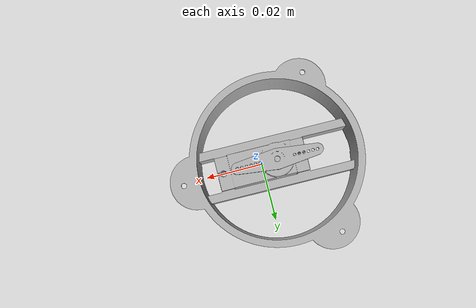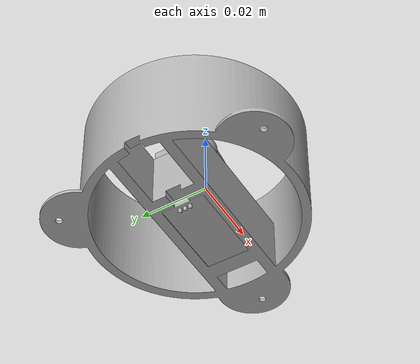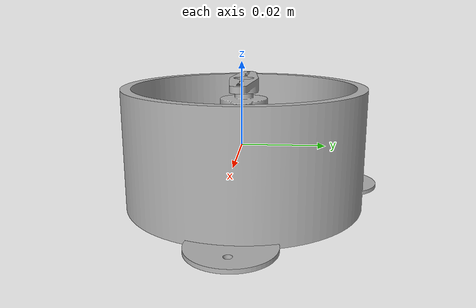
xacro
<?xml version="1.0" ?>
<robot name="Servo_clone" xmlns:xacro="http://www.ros.org/wiki/xacro">

<xacro:include filename="$(find Servo_clone_description)/urdf/materials.xacro" />
<xacro:include filename="$(find Servo_clone_description)/urdf/Servo_clone.trans" />
<xacro:include filename="$(find Servo_clone_description)/urdf/Servo_clone.gazebo" />
<xacro:include filename="$(find ros2_control_demo_example_1)/ros2_control/servo_arm.ros2_control.xacro" />

<link name="base_link">
  <inertial>
    <origin xyz="-0.0003733261171936679 -1.415969839225099e-10 -0.003749778735520101" rpy="0 0 0"/>
    <mass value="0.05514475420323322"/>
    <inertia ixx="4e-06" iyy="6e-06" izz="3e-06" ixy="-0.0" iyz="0.0" ixz="0.0"/>
  </inertial>
  <visual>
    <origin xyz="0 0 0" rpy="0 0 0"/>
    <geometry>
      <mesh filename="file://$(find Servo_clone_description)/meshes/base_link.stl" scale="0.001 0.001 0.001"/>
    </geometry>
    <material name="silver"/>
  </visual>
  <collision>
    <origin xyz="0 0 0" rpy="0 0 0"/>
    <geometry>
      <mesh filename="file://$(find Servo_clone_description)/meshes/base_link.stl" scale="0.001 0.001 0.001"/>
    </geometry>
  </collision>
</link>

<link name="horn_1">
  <inertial>
    <origin xyz="8.352693536828326e-16 -8.054779743942258e-18 0.000837172855025211" rpy="0 0 0"/>
    <mass value="0.0022458903814511905"/>
    <inertia ixx="0.0" iyy="0.0" izz="0.0" ixy="-0.0" iyz="-0.0" ixz="-0.0"/>
  </inertial>
  <visual>
    <origin xyz="0.00535 -0.0 -0.0136" rpy="0 0 0"/>
    <geometry>
      <mesh filename="file://$(find Servo_clone_description)/meshes/horn_1.stl" scale="0.001 0.001 0.001"/>
    </geometry>
    <material name="silver"/>
  </visual>
  <collision>
    <origin xyz="0.00535 -0.0 -0.0136" rpy="0 0 0"/>
    <geometry>
      <mesh filename="file://$(find Servo_clone_description)/meshes/horn_1.stl" scale="0.001 0.001 0.001"/>
    </geometry>
  </collision>
</link>

<link name="arm_base_1">
  <inertial>
    <origin xyz="-0.0187517959656261 -1.796348326727161e-17 -0.0038637379533287297" rpy="0 0 0"/>
    <mass value="0.16304743822991946"/>
    <inertia ixx="6e-05" iyy="6.9e-05" izz="0.000107" ixy="0.0" iyz="-0.0" ixz="0.0"/>
  </inertial>
  <visual>
    <origin xyz="-0.0139 0.0 -0.0" rpy="0 0 0"/>
    <geometry>
      <mesh filename="file://$(find Servo_clone_description)/meshes/arm_base_1.stl" scale="0.001 0.001 0.001"/>
    </geometry>
    <material name="silver"/>
  </visual>
  <collision>
    <origin xyz="-0.0139 0.0 -0.0" rpy="0 0 0"/>
    <geometry>
      <mesh filename="file://$(find Servo_clone_description)/meshes/arm_base_1.stl" scale="0.001 0.001 0.001"/>
    </geometry>
  </collision>
</link>

<joint name="Revolute_1" type="revolute">
  <origin xyz="-0.00535 0.0 0.0136" rpy="0 0 0"/>
  <parent link="base_link"/>
  <child link="horn_1"/>
  <axis xyz="0.0 0.0 1.0"/>
  <limit upper="1.570796" lower="-1.570796" effort="100" velocity="100"/>
</joint>

<joint name="Rigid_4" type="fixed">
  <origin xyz="0.0139 0.0 0.0" rpy="0 0 0"/>
  <parent link="base_link"/>
  <child link="arm_base_1"/>
</joint>

</robot>

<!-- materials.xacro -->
<robot name="Servo_clone" xmlns:xacro="http://www.ros.org/wiki/xacro" >

<material name="silver">
  <color rgba="0.700 0.700 0.700 1.000"/>
</material>

</robot>

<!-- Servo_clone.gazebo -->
<robot name="Servo_clone" xmlns:xacro="http://www.ros.org/wiki/xacro" >

<xacro:property name="body_color" value="Gazebo/Silver" />

<gazebo>
  <plugin name="control" filename="libgazebo_ros_control.so"/>
</gazebo>
<gazebo reference="base_link">
  <material>${body_color}</material>
  <mu1>0.2</mu1>
  <mu2>0.2</mu2>
  <self_collide>true</self_collide>
  <gravity>true</gravity>
</gazebo>

<gazebo reference="horn_1">
  <material>${body_color}</material>
  <mu1>0.2</mu1>
  <mu2>0.2</mu2>
  <self_collide>true</self_collide>
</gazebo>

<gazebo reference="arm_base_1">
  <material>${body_color}</material>
  <mu1>0.2</mu1>
  <mu2>0.2</mu2>
  <self_collide>true</self_collide>
</gazebo>

</robot>
